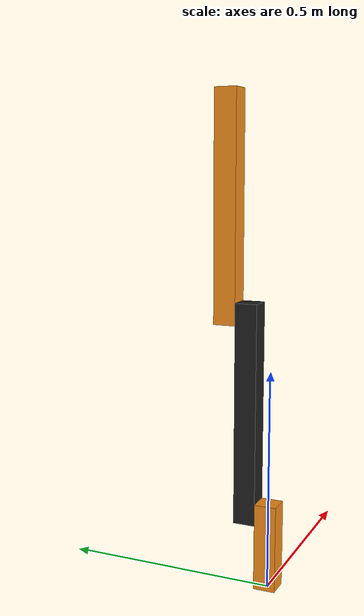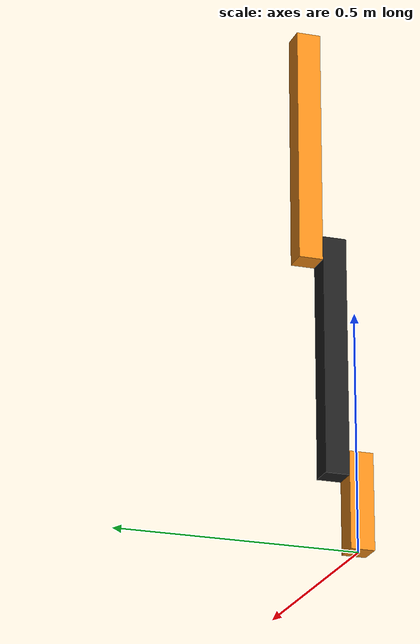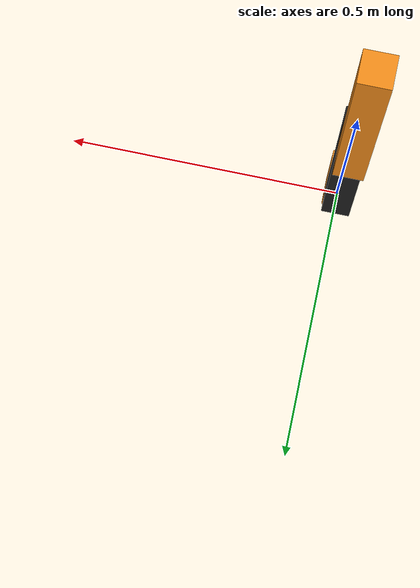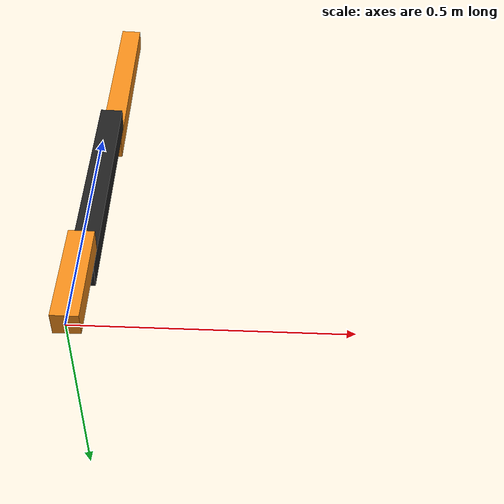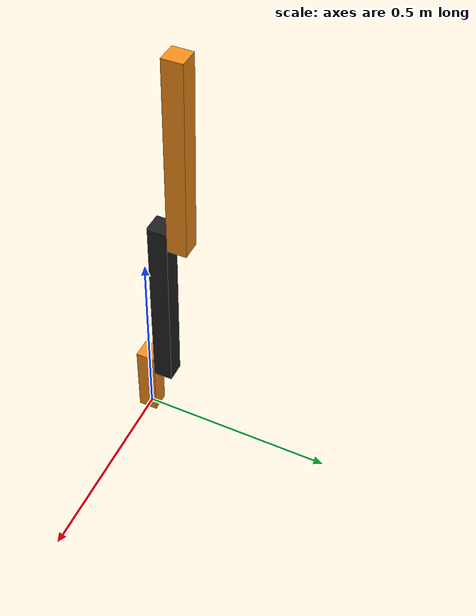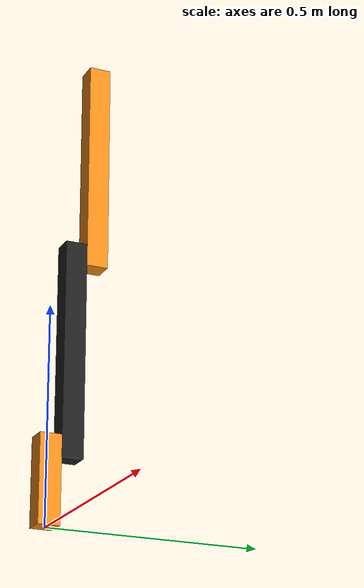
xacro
<?xml version="1.0"?>
<!-- Revolute-Revolute-Revolute Manipulator -->
<robot name="rrrbot" xmlns:xacro="http://www.ros.org/wiki/xacro">

  <!-- Constants for robot dimensions -->
  <xacro:property name="PI" value="3.1415926535897931"/>
  <xacro:property name="width" value="0.05" /> <!-- Square dimensions (widthxwidth) of beams -->
  <xacro:property name="height1" value="0.2" /> <!-- Link 1 -->
  <xacro:property name="height2" value="0.5" /> <!-- Link 2 -->
  <xacro:property name="height3" value="0.5" /> <!-- Link 3 -->
  <xacro:property name="height4" value="0.5" /> <!-- Link 4 -->
  <xacro:property name="camera_link" value="0.025" /> <!-- Size of square 'camera' box -->
  <xacro:property name="axel_offset" value="0.025" /> <!-- Space btw top of beam and the each joint -->

  <!-- Import all Gazebo-customization elements, including Gazebo colors -->
  <xacro:include filename="$(find rrrbot_description)/urdf/rrrbot.gazebo" />
  <!-- Import Rviz colors -->
  <xacro:include filename="$(find rrrbot_description)/urdf/materials.xacro" />

  <!-- Used for fixing robot to Gazebo 'base_link' -->
  <link name="world"/>

  <joint name="fixed" type="fixed">
    <parent link="world"/>
    <child link="link1"/>
  </joint>

  <!-- Base Link -->
  <link name="link1">
    <collision>
      <origin xyz="0 0 ${height1/2}" rpy="0 0 0"/>
      <geometry>
	<box size="${width} ${width} ${height1}"/>
      </geometry>
    </collision>

    <visual>
      <origin xyz="0 0 ${height1/2}" rpy="0 0 0"/>
      <geometry>
	<box size="${width} ${width} ${height1}"/>
      </geometry>
      <material name="orange"/>
    </visual>

    <inertial>
      <origin xyz="0 0 ${height1/2}" rpy="0 0 0"/>
      <mass value="1"/>
      <inertia
	  ixx="1.0" ixy="0.0" ixz="0.0"
	  iyy="1.0" iyz="0.0"
	  izz="1.0"/>
    </inertial>
  </link>

  <joint name="joint1" type="revolute">
    <parent link="link1"/>
    <child link="link2"/>
    <origin xyz="0 ${width} ${height1 - axel_offset}" rpy="0 0 0"/>
    <axis xyz="0 1 0"/>
    <dynamics damping="0.0" friction="0.0"/>
    <limit effort="100" velocity="10.0" lower="-3.14" upper="3.14" />
  </joint>

  <!-- Second Link -->
  <link name="link2">
    <collision>
      <origin xyz="0 0 ${height2/2 - axel_offset}" rpy="0 0 0"/>
      <geometry>
	<box size="${width} ${width} ${height2}"/>
      </geometry>
    </collision>

    <visual>
      <origin xyz="0 0 ${height2/2 - axel_offset}" rpy="0 0 0"/>
      <geometry>
	<box size="${width} ${width} ${height2}"/>
      </geometry>
      <material name="black"/>
    </visual>

    <inertial>
      <origin xyz="0 0 ${height2/2 - axel_offset}" rpy="0 0 0"/>
      <mass value="1"/>
      <inertia
	  ixx="1.0" ixy="0.0" ixz="0.0"
	  iyy="1.0" iyz="0.0"
	  izz="1.0"/>
    </inertial>
  </link>

  <joint name="joint2" type="revolute">
    <parent link="link2"/>
    <child link="link3"/>
    <origin xyz="0 ${width} ${height2 - 2*axel_offset}" rpy="0 0 0"/>
    <axis xyz="0 1 0"/>
    <dynamics damping="0.0" friction="0.0"/>
    <limit effort="100" velocity="10.0" lower="-3.14" upper="3.14" />
  </joint>

  <!-- Third Link -->
  <link name="link3">
    <collision>
      <origin xyz="0 0 ${height3/2 - axel_offset}" rpy="0 0 0"/>
      <geometry>
	<box size="${width} ${width} ${height3}"/>
      </geometry>
    </collision>

    <visual>
      <origin xyz="0 0 ${height3/2 - axel_offset}" rpy="0 0 0"/>
      <geometry>
	<box size="${width} ${width} ${height3}"/>
      </geometry>
      <material name="orange"/>
    </visual>

    <inertial>
      <origin xyz="0 0 ${height3/2 - axel_offset}" rpy="0 0 0"/>
      <mass value="1"/>
      <inertia
	  ixx="1.0" ixy="0.0" ixz="0.0"
	  iyy="1.0" iyz="0.0"
	  izz="1.0"/>
    </inertial>
  </link>

  <transmission name="tran1">
    <type>transmission_interface/SimpleTransmission</type>
    <joint name="joint1">
      <hardwareInterface>hardware_interface/EffortJointInterface</hardwareInterface>
    </joint>
    <actuator name="motor1">
      <hardwareInterface>hardware_interface/EffortJointInterface</hardwareInterface>
      <mechanicalReduction>1</mechanicalReduction>
    </actuator>
  </transmission>

  <transmission name="tran2">
    <type>transmission_interface/SimpleTransmission</type>
    <joint name="joint2">
      <hardwareInterface>hardware_interface/EffortJointInterface</hardwareInterface>
    </joint>
    <actuator name="motor2">
      <hardwareInterface>hardware_interface/EffortJointInterface</hardwareInterface>
      <mechanicalReduction>1</mechanicalReduction>
    </actuator>
  </transmission>

</robot>
